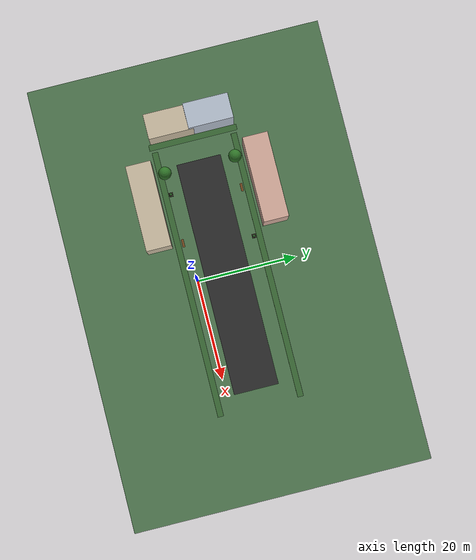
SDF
<sdf version="1.6">
 <world name="sidewalk_ring">
  <model name="base_ground">
   <static>true</static>
   <pose>0.000 6.000 -0.050 0 0 0</pose>
   <link name="link">
    <visual name="vis">
     <geometry><box><size>90 60 0.1</size></box></geometry>
     <material>
      <ambient>0.3 0.45 0.3 1</ambient>
      <diffuse>0.3 0.45 0.3 1</diffuse>
      <specular>0.1 0.1 0.1 1</specular>
     </material>
    </visual>
   </link>
   <plugin filename="ignition-gazebo-label-system" name="ignition::gazebo::systems::Label">
    <label>10</label>
   </plugin>
  </model>
  <model name="road_surface">
   <static>true</static>
   <pose>0.000 6.000 0.001 0 0 0</pose>
   <link name="link">
    <collision name="col"><geometry><box><size>47 9 0.02</size></box></geometry></collision>
    <visual name="vis">
     <geometry><box><size>47 9 0.02</size></box></geometry>
     <material>
      <ambient>0.16 0.16 0.16 1</ambient>
      <diffuse>0.16 0.16 0.16 1</diffuse>
      <specular>0.1 0.1 0.1 1</specular>
     </material>
    </visual>
   </link>
   <plugin filename="ignition-gazebo-label-system" name="ignition::gazebo::systems::Label">
    <label>1</label>
   </plugin>
  </model>
  <model name="grass_A">
   <static>true</static>
   <pose>0.000 -2.100 0.045 0 0 0</pose>
   <link name="link">
    <collision name="col"><geometry><box><size>54 1.2 0.03</size></box></geometry></collision>
    <visual name="vis">
     <geometry><box><size>54 1.2 0.03</size></box></geometry>
     <material>
      <ambient>0.22 0.4 0.2 1</ambient>
      <diffuse>0.22 0.4 0.2 1</diffuse>
      <specular>0.1 0.1 0.1 1</specular>
     </material>
    </visual>
   </link>
   <plugin filename="ignition-gazebo-label-system" name="ignition::gazebo::systems::Label">
    <label>10</label>
   </plugin>
  </model>
  <model name="grass_B">
   <static>true</static>
   <pose>0.000 14.100 0.045 0 0 0</pose>
   <link name="link">
    <collision name="col"><geometry><box><size>54 1.2 0.03</size></box></geometry></collision>
    <visual name="vis">
     <geometry><box><size>54 1.2 0.03</size></box></geometry>
     <material>
      <ambient>0.22 0.4 0.2 1</ambient>
      <diffuse>0.22 0.4 0.2 1</diffuse>
      <specular>0.1 0.1 0.1 1</specular>
     </material>
    </visual>
   </link>
   <plugin filename="ignition-gazebo-label-system" name="ignition::gazebo::systems::Label">
    <label>10</label>
   </plugin>
  </model>
  <model name="grass_L">
   <static>true</static>
   <pose>-28.100 6.000 0.045 0 0 0</pose>
   <link name="link">
    <collision name="col"><geometry><box><size>1.2 18 0.03</size></box></geometry></collision>
    <visual name="vis">
     <geometry><box><size>1.2 18 0.03</size></box></geometry>
     <material>
      <ambient>0.22 0.4 0.2 1</ambient>
      <diffuse>0.22 0.4 0.2 1</diffuse>
      <specular>0.1 0.1 0.1 1</specular>
     </material>
    </visual>
   </link>
   <plugin filename="ignition-gazebo-label-system" name="ignition::gazebo::systems::Label">
    <label>10</label>
   </plugin>
  </model>
  <model name="bldg_A0">
   <static>true</static>
   <pose>-16.000 -5.700 3.679 0 0 0</pose>
   <link name="link">
    <collision name="col"><geometry><box><size>17 5 7.357138660529456</size></box></geometry></collision>
    <visual name="vis">
     <geometry><box><size>17 5 7.357138660529456</size></box></geometry>
     <material>
      <ambient>0.78 0.72 0.62 1</ambient>
      <diffuse>0.78 0.72 0.62 1</diffuse>
      <specular>0.1 0.1 0.1 1</specular>
     </material>
    </visual>
   </link>
   <plugin filename="ignition-gazebo-label-system" name="ignition::gazebo::systems::Label">
    <label>3</label>
   </plugin>
  </model>
  <model name="bldg_B0">
   <static>true</static>
   <pose>-16.000 17.700 3.698 0 0 0</pose>
   <link name="link">
    <collision name="col"><geometry><box><size>17 5 7.39695021029932</size></box></geometry></collision>
    <visual name="vis">
     <geometry><box><size>17 5 7.39695021029932</size></box></geometry>
     <material>
      <ambient>0.82 0.66 0.6 1</ambient>
      <diffuse>0.82 0.66 0.6 1</diffuse>
      <specular>0.1 0.1 0.1 1</specular>
     </material>
    </visual>
   </link>
   <plugin filename="ignition-gazebo-label-system" name="ignition::gazebo::systems::Label">
    <label>3</label>
   </plugin>
  </model>
  <model name="bldg_L0">
   <static>true</static>
   <pose>-31.200 2.000 3.277 0 0 0</pose>
   <link name="link">
    <collision name="col"><geometry><box><size>5 9 6.55398103156463</size></box></geometry></collision>
    <visual name="vis">
     <geometry><box><size>5 9 6.55398103156463</size></box></geometry>
     <material>
      <ambient>0.78 0.72 0.62 1</ambient>
      <diffuse>0.78 0.72 0.62 1</diffuse>
      <specular>0.1 0.1 0.1 1</specular>
     </material>
    </visual>
   </link>
   <plugin filename="ignition-gazebo-label-system" name="ignition::gazebo::systems::Label">
    <label>3</label>
   </plugin>
  </model>
  <model name="bldg_L1">
   <static>true</static>
   <pose>-31.200 10.000 3.945 0 0 0</pose>
   <link name="link">
    <collision name="col"><geometry><box><size>5 9 7.889648160650406</size></box></geometry></collision>
    <visual name="vis">
     <geometry><box><size>5 9 7.889648160650406</size></box></geometry>
     <material>
      <ambient>0.7 0.74 0.8 1</ambient>
      <diffuse>0.7 0.74 0.8 1</diffuse>
      <specular>0.1 0.1 0.1 1</specular>
     </material>
    </visual>
   </link>
   <plugin filename="ignition-gazebo-label-system" name="ignition::gazebo::systems::Label">
    <label>3</label>
   </plugin>
  </model>
  <model name="tree_0">
   <static>true</static>
   <pose>-22.00 -1.10 0 0 0 0</pose>
   <link name="link">
    <collision name="tc">
     <pose>0 0 1.54 0 0 0</pose>
     <geometry><cylinder><radius>0.18</radius><length>3.08</length></cylinder></geometry>
    </collision>
    <visual name="tv">
     <pose>0 0 1.54 0 0 0</pose>
     <geometry><cylinder><radius>0.18</radius><length>3.08</length></cylinder></geometry>
     <material><ambient>0.36 0.22 0.10 1</ambient><diffuse>0.45 0.28 0.12 1</diffuse></material>
    </visual>
    <collision name="cc">
     <pose>0 0 3.38 0 0 0</pose>
     <geometry><sphere><radius>1.3</radius></sphere></geometry>
    </collision>
    <visual name="cv">
     <pose>0 0 3.38 0 0 0</pose>
     <geometry><sphere><radius>1.3</radius></sphere></geometry>
     <material><ambient>0.14 0.36 0.12 1</ambient><diffuse>0.18 0.45 0.15 1</diffuse></material>
    </visual>
   </link>
   <plugin filename="ignition-gazebo-label-system" name="ignition::gazebo::systems::Label">
    <label>9</label>
   </plugin>
  </model>
  <model name="tree_2">
   <static>true</static>
   <pose>-22.00 13.10 0 0 0 0</pose>
   <link name="link">
    <collision name="tc">
     <pose>0 0 1.54 0 0 0</pose>
     <geometry><cylinder><radius>0.18</radius><length>3.07</length></cylinder></geometry>
    </collision>
    <visual name="tv">
     <pose>0 0 1.54 0 0 0</pose>
     <geometry><cylinder><radius>0.18</radius><length>3.07</length></cylinder></geometry>
     <material><ambient>0.36 0.22 0.10 1</ambient><diffuse>0.45 0.28 0.12 1</diffuse></material>
    </visual>
    <collision name="cc">
     <pose>0 0 3.37 0 0 0</pose>
     <geometry><sphere><radius>1.3</radius></sphere></geometry>
    </collision>
    <visual name="cv">
     <pose>0 0 3.37 0 0 0</pose>
     <geometry><sphere><radius>1.3</radius></sphere></geometry>
     <material><ambient>0.14 0.36 0.12 1</ambient><diffuse>0.18 0.45 0.15 1</diffuse></material>
    </visual>
   </link>
   <plugin filename="ignition-gazebo-label-system" name="ignition::gazebo::systems::Label">
    <label>9</label>
   </plugin>
  </model>
  <model name="plA1">
   <static>true</static>
   <pose>-18.00 -1.00 0.16 0 0 0</pose>
   <link name="link">
    <collision name="c"><geometry><box><size>0.8 0.8 0.32</size></box></geometry></collision>
    <visual name="v">
     <geometry><box><size>0.8 0.8 0.32</size></box></geometry>
     <material><ambient>0.16 0.14 0.11 1</ambient><diffuse>0.20 0.18 0.14 1</diffuse></material>
    </visual>
   </link>
   <plugin filename="ignition-gazebo-label-system" name="ignition::gazebo::systems::Label">
    <label>3</label>
   </plugin>
  </model>
  <model name="plA1_s">
   <static>true</static>
   <pose>-18.00 -1.00 0.55 0 0 0</pose>
   <link name="link">
    <collision name="c"><geometry><sphere><radius>0.28</radius></sphere></geometry></collision>
    <visual name="v">
     <geometry><sphere><radius>0.28</radius></sphere></geometry>
     <material><ambient>0.14 0.30 0.12 1</ambient><diffuse>0.17 0.38 0.15 1</diffuse></material>
    </visual>
   </link>
   <plugin filename="ignition-gazebo-label-system" name="ignition::gazebo::systems::Label">
    <label>9</label>
   </plugin>
  </model>
  <model name="benA1">
   <static>true</static>
   <pose>-8.00 -1.00 0 0 0 0</pose>
   <link name="link">
    <collision name="s">
     <pose>0 0 0.42 0 0 0</pose>
     <geometry><box><size>1.6 0.45 0.08</size></box></geometry>
    </collision>
    <visual name="sv">
     <pose>0 0 0.42 0 0 0</pose>
     <geometry><box><size>1.6 0.45 0.08</size></box></geometry>
     <material><ambient>0.36 0.22 0.10 1</ambient><diffuse>0.45 0.28 0.12 1</diffuse></material>
    </visual>
    <collision name="l1">
     <pose>-0.65 0 0.21 0 0 0</pose>
     <geometry><box><size>0.08 0.4 0.42</size></box></geometry>
    </collision>
    <visual name="l1v">
     <pose>-0.65 0 0.21 0 0 0</pose>
     <geometry><box><size>0.08 0.4 0.42</size></box></geometry>
     <material><ambient>0.16 0.16 0.16 1</ambient><diffuse>0.2 0.2 0.2 1</diffuse></material>
    </visual>
    <collision name="l2">
     <pose>0.65 0 0.21 0 0 0</pose>
     <geometry><box><size>0.08 0.4 0.42</size></box></geometry>
    </collision>
    <visual name="l2v">
     <pose>0.65 0 0.21 0 0 0</pose>
     <geometry><box><size>0.08 0.4 0.42</size></box></geometry>
     <material><ambient>0.16 0.16 0.16 1</ambient><diffuse>0.2 0.2 0.2 1</diffuse></material>
    </visual>
   </link>
   <plugin filename="ignition-gazebo-label-system" name="ignition::gazebo::systems::Label">
    <label>3</label>
   </plugin>
  </model>
  <model name="benB1">
   <static>true</static>
   <pose>-16.00 13.00 0 0 0 0</pose>
   <link name="link">
    <collision name="s">
     <pose>0 0 0.42 0 0 0</pose>
     <geometry><box><size>1.6 0.45 0.08</size></box></geometry>
    </collision>
    <visual name="sv">
     <pose>0 0 0.42 0 0 0</pose>
     <geometry><box><size>1.6 0.45 0.08</size></box></geometry>
     <material><ambient>0.36 0.22 0.10 1</ambient><diffuse>0.45 0.28 0.12 1</diffuse></material>
    </visual>
    <collision name="l1">
     <pose>-0.65 0 0.21 0 0 0</pose>
     <geometry><box><size>0.08 0.4 0.42</size></box></geometry>
    </collision>
    <visual name="l1v">
     <pose>-0.65 0 0.21 0 0 0</pose>
     <geometry><box><size>0.08 0.4 0.42</size></box></geometry>
     <material><ambient>0.16 0.16 0.16 1</ambient><diffuse>0.2 0.2 0.2 1</diffuse></material>
    </visual>
    <collision name="l2">
     <pose>0.65 0 0.21 0 0 0</pose>
     <geometry><box><size>0.08 0.4 0.42</size></box></geometry>
    </collision>
    <visual name="l2v">
     <pose>0.65 0 0.21 0 0 0</pose>
     <geometry><box><size>0.08 0.4 0.42</size></box></geometry>
     <material><ambient>0.16 0.16 0.16 1</ambient><diffuse>0.2 0.2 0.2 1</diffuse></material>
    </visual>
   </link>
   <plugin filename="ignition-gazebo-label-system" name="ignition::gazebo::systems::Label">
    <label>3</label>
   </plugin>
  </model>
  <model name="plB1">
   <static>true</static>
   <pose>-6.00 13.00 0.16 0 0 0</pose>
   <link name="link">
    <collision name="c"><geometry><box><size>0.8 0.8 0.32</size></box></geometry></collision>
    <visual name="v">
     <geometry><box><size>0.8 0.8 0.32</size></box></geometry>
     <material><ambient>0.16 0.14 0.11 1</ambient><diffuse>0.20 0.18 0.14 1</diffuse></material>
    </visual>
   </link>
   <plugin filename="ignition-gazebo-label-system" name="ignition::gazebo::systems::Label">
    <label>3</label>
   </plugin>
  </model>
  <model name="plB1_s">
   <static>true</static>
   <pose>-6.00 13.00 0.55 0 0 0</pose>
   <link name="link">
    <collision name="c"><geometry><sphere><radius>0.28</radius></sphere></geometry></collision>
    <visual name="v">
     <geometry><sphere><radius>0.28</radius></sphere></geometry>
     <material><ambient>0.14 0.30 0.12 1</ambient><diffuse>0.17 0.38 0.15 1</diffuse></material>
    </visual>
   </link>
   <plugin filename="ignition-gazebo-label-system" name="ignition::gazebo::systems::Label">
    <label>9</label>
   </plugin>
  </model>
 </world>
</sdf>
